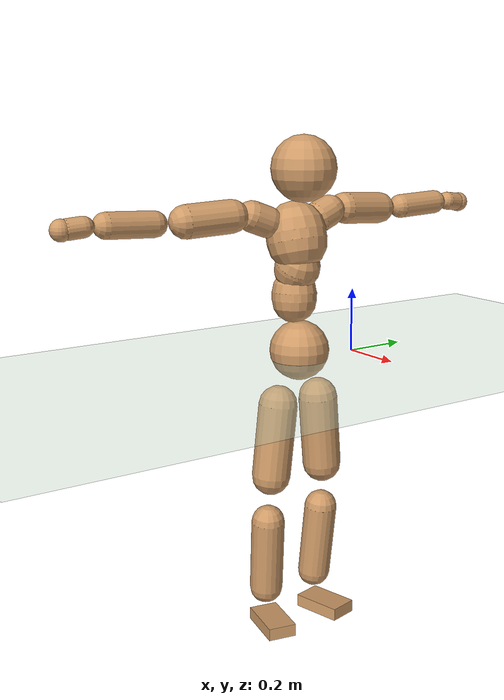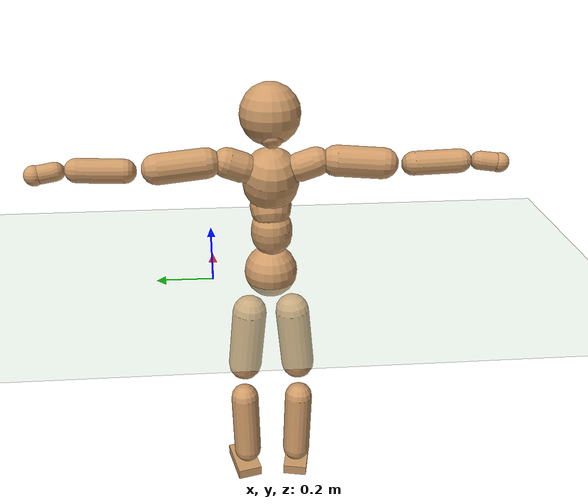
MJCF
<mujoco model="humanoid">
  <compiler coordinate="local" angle="radian"/>
  <default>
    <joint damping="0.0" armature="0.01" stiffness="0.0" limited="true"/>
    <geom conaffinity="1" condim="3" contype="7" margin="0.001" rgba="0.8 0.6 .4 1"/>
  </default>
  <asset>
    <texture type="skybox" builtin="gradient" rgb1=".4 .5 .6" rgb2="0 0 0" width="100" height="100"/>
    <texture builtin="flat" height="1278" mark="cross" markrgb="1 1 1" name="texgeom" random="0.01" rgb1="0.8 0.6 0.4" rgb2="0.8 0.6 0.4" type="cube" width="127"/>
    <texture builtin="checker" height="100" name="texplane" rgb1="0 0 0" rgb2="0.8 0.8 0.8" type="2d" width="100"/>
    <material name="MatPlane" reflectance="0.5" shininess="1" specular="1" texrepeat="60 60" texture="texplane"/>
    <material name="geom" texture="texgeom" texuniform="true"/>
  </asset>
  <worldbody>
    <light cutoff="100" diffuse="1 1 1" dir="-0 0 -1.3" directional="true" exponent="1" pos="0 0 1.3" specular=".1 .1 .1"/>
    <geom conaffinity="1" condim="3" name="floor" pos="0 0 0" rgba="0.8 0.9 0.8 1" size="100 100 .2" type="plane" material="MatPlane"/>
    <body name="Pelvis" pos="-0.0018 -0.2068 0.0279">
      <freejoint name="Pelvis"/>
      <geom type="sphere" contype="1" conaffinity="1" density="500" size="0.0939" pos="0.0000 0.0000 0.0000" name="Pelvis"/>
      <body name="L_Hip" pos="-0.0062 0.0723 -0.09">
        <joint name="L_Hip_x" type="hinge" pos="0 0 0" axis="1 0 0" stiffness="800" damping="80" armature="0.02" range="-180.0000 180.0000"/>
        <joint name="L_Hip_y" type="hinge" pos="0 0 0" axis="0 1 0" stiffness="800" damping="80" armature="0.02" range="-180.0000 180.0000"/>
        <joint name="L_Hip_z" type="hinge" pos="0 0 0" axis="0 0 1" stiffness="800" damping="80" armature="0.02" range="-180.0000 180.0000"/>
        <geom type="capsule" contype="1" conaffinity="1" density="500" fromto="-0.0010 0.0069 -0.0768 -0.0040 0.0277 -0.3072" size="0.0622" name="L_Hip"/>
        <body name="L_Knee" pos="-0.005 0.0346 -0.384">
          <joint name="L_Knee_x" type="hinge" pos="0 0 0" axis="1 0 0" stiffness="800" damping="80" armature="0.02" range="-180.0000 180.0000"/>
          <joint name="L_Knee_y" type="hinge" pos="0 0 0" axis="0 1 0" stiffness="800" damping="80" armature="0.02" range="-180.0000 180.0000"/>
          <joint name="L_Knee_z" type="hinge" pos="0 0 0" axis="0 0 1" stiffness="800" damping="80" armature="0.02" range="-180.0000 180.0000"/>
          <geom type="capsule" contype="1" conaffinity="1" density="500" fromto="-0.0089 -0.0022 -0.0810 -0.0355 -0.0087 -0.3238" size="0.0534" name="L_Knee"/>
          <body name="L_Ankle" pos="-0.0444 -0.0109 -0.4048">
            <joint name="L_Ankle_x" type="hinge" pos="0 0 0" axis="1 0 0" stiffness="800" damping="80" armature="0.02" range="-180.0000 180.0000"/>
            <joint name="L_Ankle_y" type="hinge" pos="0 0 0" axis="0 1 0" stiffness="800" damping="80" armature="0.02" range="-180.0000 180.0000"/>
            <joint name="L_Ankle_z" type="hinge" pos="0 0 0" axis="0 0 1" stiffness="800" damping="80" armature="0.02" range="-180.0000 180.0000"/>
            <geom type="box" contype="1" conaffinity="1" density="500" pos="0.0582 0.0135 -0.0289" size="0.0829 0.0472 0.0203" quat="0.9935 0.0000 0.0000 0.1135" name="L_Ankle"/>
            <body name="L_Toe" pos="0.1163 0.0269 -0.0579">
              <joint name="L_Toe_x" type="hinge" pos="0 0 0" axis="1 0 0" stiffness="500" damping="50" armature="0.02" range="-180.0000 180.0000"/>
              <joint name="L_Toe_y" type="hinge" pos="0 0 0" axis="0 1 0" stiffness="500" damping="50" armature="0.02" range="-180.0000 180.0000"/>
              <joint name="L_Toe_z" type="hinge" pos="0 0 0" axis="0 0 1" stiffness="500" damping="50" armature="0.02" range="-180.0000 180.0000"/>
              <geom type="box" contype="1" conaffinity="1" density="500" pos="0.0000 0.0000 0.0292" size="0.0009 0.0023 0.001" quat="0.9928 0.0000 0.0000 0.1196" name="L_Toe"/>
            </body>
          </body>
        </body>
      </body>
      <body name="R_Hip" pos="-0.0029 -0.0702 -0.0893">
        <joint name="R_Hip_x" type="hinge" pos="0 0 0" axis="1 0 0" stiffness="800" damping="80" armature="0.02" range="-180.0000 180.0000"/>
        <joint name="R_Hip_y" type="hinge" pos="0 0 0" axis="0 1 0" stiffness="800" damping="80" armature="0.02" range="-180.0000 180.0000"/>
        <joint name="R_Hip_z" type="hinge" pos="0 0 0" axis="0 0 1" stiffness="800" damping="80" armature="0.02" range="-180.0000 180.0000"/>
        <geom type="capsule" contype="1" conaffinity="1" density="500" fromto="-0.0015 -0.0081 -0.0782 -0.0061 -0.0325 -0.3126" size="0.0614" name="R_Hip"/>
        <body name="R_Knee" pos="-0.0076 -0.0407 -0.3908">
          <joint name="R_Knee_x" type="hinge" pos="0 0 0" axis="1 0 0" stiffness="800" damping="80" armature="0.02" range="-180.0000 180.0000"/>
          <joint name="R_Knee_y" type="hinge" pos="0 0 0" axis="0 1 0" stiffness="800" damping="80" armature="0.02" range="-180.0000 180.0000"/>
          <joint name="R_Knee_z" type="hinge" pos="0 0 0" axis="0 0 1" stiffness="800" damping="80" armature="0.02" range="-180.0000 180.0000"/>
          <geom type="capsule" contype="1" conaffinity="1" density="500" fromto="-0.0086 0.0027 -0.0810 -0.0342 0.0109 -0.3241" size="0.0536" name="R_Knee"/>
          <body name="R_Ankle" pos="-0.0428 0.0136 -0.4051">
            <joint name="R_Ankle_x" type="hinge" pos="0 0 0" axis="1 0 0" stiffness="800" damping="80" armature="0.02" range="-180.0000 180.0000"/>
            <joint name="R_Ankle_y" type="hinge" pos="0 0 0" axis="0 1 0" stiffness="800" damping="80" armature="0.02" range="-180.0000 180.0000"/>
            <joint name="R_Ankle_z" type="hinge" pos="0 0 0" axis="0 0 1" stiffness="800" damping="80" armature="0.02" range="-180.0000 180.0000"/>
            <geom type="box" contype="1" conaffinity="1" density="500" pos="0.0599 -0.0121 -0.0243" size="0.084 0.0464 0.0203" quat="0.9950 0.0000 0.0000 -0.0998" name="R_Ankle"/>
            <body name="R_Toe" pos="0.1198 -0.0243 -0.0486">
              <joint name="R_Toe_x" type="hinge" pos="0 0 0" axis="1 0 0" stiffness="500" damping="50" armature="0.02" range="-180.0000 180.0000"/>
              <joint name="R_Toe_y" type="hinge" pos="0 0 0" axis="0 1 0" stiffness="500" damping="50" armature="0.02" range="-180.0000 180.0000"/>
              <joint name="R_Toe_z" type="hinge" pos="0 0 0" axis="0 0 1" stiffness="500" damping="50" armature="0.02" range="-180.0000 180.0000"/>
              <geom type="box" contype="1" conaffinity="1" density="500" pos="0.0000 0.0000 0.0269" size="0.0008 0.0023 0.0011" quat="0.9959 0.0000 0.0000 -0.0904" name="R_Toe"/>
            </body>
          </body>
        </body>
      </body>
      <body name="Torso" pos="-0.025 -0.0031 0.104">
        <joint name="Torso_x" type="hinge" pos="0 0 0" axis="1 0 0" stiffness="1000" damping="100" armature="0.02" range="-180.0000 180.0000"/>
        <joint name="Torso_y" type="hinge" pos="0 0 0" axis="0 1 0" stiffness="1000" damping="100" armature="0.02" range="-180.0000 180.0000"/>
        <joint name="Torso_z" type="hinge" pos="0 0 0" axis="0 0 1" stiffness="1000" damping="100" armature="0.02" range="-180.0000 180.0000"/>
        <geom type="capsule" contype="1" conaffinity="1" density="500" fromto="-0.0026 0.0027 0.0764 -0.0017 0.0018 0.0509" size="0.0706" name="Torso"/>
        <body name="Spine" pos="-0.0043 0.0045 0.1274">
          <joint name="Spine_x" type="hinge" pos="0 0 0" axis="1 0 0" stiffness="1000" damping="100" armature="0.02" range="-180.0000 180.0000"/>
          <joint name="Spine_y" type="hinge" pos="0 0 0" axis="0 1 0" stiffness="1000" damping="100" armature="0.02" range="-180.0000 180.0000"/>
          <joint name="Spine_z" type="hinge" pos="0 0 0" axis="0 0 1" stiffness="1000" damping="100" armature="0.02" range="-180.0000 180.0000"/>
          <geom type="capsule" contype="1" conaffinity="1" density="500" fromto="0.0163 0.0009 0.0298 0.0109 0.0006 0.0199" size="0.0708" name="Spine"/>
          <body name="Chest" pos="0.0271 0.0015 0.0497">
            <joint name="Chest_x" type="hinge" pos="0 0 0" axis="1 0 0" stiffness="1000" damping="100" armature="0.02" range="-180.0000 180.0000"/>
            <joint name="Chest_y" type="hinge" pos="0 0 0" axis="0 1 0" stiffness="1000" damping="100" armature="0.02" range="-180.0000 180.0000"/>
            <joint name="Chest_z" type="hinge" pos="0 0 0" axis="0 0 1" stiffness="1000" damping="100" armature="0.02" range="-180.0000 180.0000"/>
            <geom type="capsule" contype="1" conaffinity="1" density="500" fromto="-0.0219 -0.0013 0.0869 -0.0146 -0.0008 0.0579" size="0.094" name="Chest"/>
            <body name="Neck" pos="-0.0362 -0.0044 0.2072">
              <joint name="Neck_x" type="hinge" pos="0 0 0" axis="1 0 0" stiffness="500" damping="50" armature="0.02" range="-180.0000 180.0000"/>
              <joint name="Neck_y" type="hinge" pos="0 0 0" axis="0 1 0" stiffness="500" damping="50" armature="0.02" range="-180.0000 180.0000"/>
              <joint name="Neck_z" type="hinge" pos="0 0 0" axis="0 0 1" stiffness="500" damping="50" armature="0.02" range="-180.0000 180.0000"/>
              <geom type="capsule" contype="1" conaffinity="1" density="500" fromto="0.0113 0.0006 0.0142 0.0452 0.0022 0.0567" size="0.0414" name="Neck"/>
              <body name="Head" pos="0.0565 0.0028 0.0708">
                <joint name="Head_x" type="hinge" pos="0 0 0" axis="1 0 0" stiffness="500" damping="50" armature="0.02" range="-180.0000 180.0000"/>
                <joint name="Head_y" type="hinge" pos="0 0 0" axis="0 1 0" stiffness="500" damping="50" armature="0.02" range="-180.0000 180.0000"/>
                <joint name="Head_z" type="hinge" pos="0 0 0" axis="0 0 1" stiffness="500" damping="50" armature="0.02" range="-180.0000 180.0000"/>
                <geom type="sphere" contype="1" conaffinity="1" density="500" size="0.1006" pos="0.0000 0.0000 0.0000" name="Head"/>
              </body>
            </body>
            <body name="L_Thorax" pos="-0.0343 0.0743 0.1144">
              <joint name="L_Thorax_x" type="hinge" pos="0 0 0" axis="1 0 0" stiffness="500" damping="50" armature="0.02" range="-180.0000 180.0000"/>
              <joint name="L_Thorax_y" type="hinge" pos="0 0 0" axis="0 1 0" stiffness="500" damping="50" armature="0.02" range="-180.0000 180.0000"/>
              <joint name="L_Thorax_z" type="hinge" pos="0 0 0" axis="0 0 1" stiffness="500" damping="50" armature="0.02" range="-180.0000 180.0000"/>
              <geom type="capsule" contype="1" conaffinity="1" density="500" fromto="-0.0017 0.0167 0.0066 -0.0070 0.0667 0.0262" size="0.0495" name="L_Thorax"/>
              <body name="L_Shoulder" pos="-0.0087 0.0834 0.0328">
                <joint name="L_Shoulder_x" type="hinge" pos="0 0 0" axis="1 0 0" stiffness="500" damping="50" armature="0.02" range="-720.0000 720.0000"/>
                <joint name="L_Shoulder_y" type="hinge" pos="0 0 0" axis="0 1 0" stiffness="500" damping="50" armature="0.02" range="-720.0000 720.0000"/>
                <joint name="L_Shoulder_z" type="hinge" pos="0 0 0" axis="0 0 1" stiffness="500" damping="50" armature="0.02" range="-720.0000 720.0000"/>
                <geom type="capsule" contype="1" conaffinity="1" density="500" fromto="-0.0061 0.0517 -0.0031 -0.0244 0.2066 -0.0126" size="0.0498" name="L_Shoulder"/>
                <body name="L_Elbow" pos="-0.0305 0.2583 -0.0157">
                  <joint name="L_Elbow_x" type="hinge" pos="0 0 0" axis="1 0 0" stiffness="500" damping="50" armature="0.02" range="-720.0000 720.0000"/>
                  <joint name="L_Elbow_y" type="hinge" pos="0 0 0" axis="0 1 0" stiffness="500" damping="50" armature="0.02" range="-720.0000 720.0000"/>
                  <joint name="L_Elbow_z" type="hinge" pos="0 0 0" axis="0 0 1" stiffness="500" damping="50" armature="0.02" range="-720.0000 720.0000"/>
                  <geom type="capsule" contype="1" conaffinity="1" density="500" fromto="-0.0001 0.0491 0.0021 -0.0003 0.1965 0.0083" size="0.0388" name="L_Elbow"/>
                  <body name="L_Wrist" pos="-0.0004 0.2456 0.0103">
                    <joint name="L_Wrist_x" type="hinge" pos="0 0 0" axis="1 0 0" stiffness="300" damping="30" armature="0.02" range="-180.0000 180.0000"/>
                    <joint name="L_Wrist_y" type="hinge" pos="0 0 0" axis="0 1 0" stiffness="300" damping="30" armature="0.02" range="-180.0000 180.0000"/>
                    <joint name="L_Wrist_z" type="hinge" pos="0 0 0" axis="0 0 1" stiffness="300" damping="30" armature="0.02" range="-180.0000 180.0000"/>
                    <geom type="capsule" contype="1" conaffinity="1" density="500" fromto="-0.0027 0.0160 -0.0020 -0.0107 0.0640 -0.0079" size="0.0301" name="L_Wrist"/>
                    <body name="L_Hand" pos="-0.0134 0.0801 -0.0099">
                      <joint name="L_Hand_x" type="hinge" pos="0 0 0" axis="1 0 0" stiffness="300" damping="30" armature="0.02" range="-180.0000 180.0000"/>
                      <joint name="L_Hand_y" type="hinge" pos="0 0 0" axis="0 1 0" stiffness="300" damping="30" armature="0.02" range="-180.0000 180.0000"/>
                      <joint name="L_Hand_z" type="hinge" pos="0 0 0" axis="0 0 1" stiffness="300" damping="30" armature="0.02" range="-180.0000 180.0000"/>
                      <geom type="sphere" contype="1" conaffinity="1" density="500" size="0.0323" pos="0.0000 0.0000 0.0000" name="L_Hand"/>
                    </body>
                  </body>
                </body>
              </body>
            </body>
            <body name="R_Thorax" pos="-0.0389 -0.0763 0.1128">
              <joint name="R_Thorax_x" type="hinge" pos="0 0 0" axis="1 0 0" stiffness="500" damping="50" armature="0.02" range="-180.0000 180.0000"/>
              <joint name="R_Thorax_y" type="hinge" pos="0 0 0" axis="0 1 0" stiffness="500" damping="50" armature="0.02" range="-180.0000 180.0000"/>
              <joint name="R_Thorax_z" type="hinge" pos="0 0 0" axis="0 0 1" stiffness="500" damping="50" armature="0.02" range="-180.0000 180.0000"/>
              <geom type="capsule" contype="1" conaffinity="1" density="500" fromto="-0.0019 -0.0171 0.0065 -0.0078 -0.0684 0.0260" size="0.0481" name="R_Thorax"/>
              <body name="R_Shoulder" pos="-0.0097 -0.0855 0.0324">
                <joint name="R_Shoulder_x" type="hinge" pos="0 0 0" axis="1 0 0" stiffness="500" damping="50" armature="0.02" range="-720.0000 720.0000"/>
                <joint name="R_Shoulder_y" type="hinge" pos="0 0 0" axis="0 1 0" stiffness="500" damping="50" armature="0.02" range="-720.0000 720.0000"/>
                <joint name="R_Shoulder_z" type="hinge" pos="0 0 0" axis="0 0 1" stiffness="500" damping="50" armature="0.02" range="-720.0000 720.0000"/>
                <geom type="capsule" contype="1" conaffinity="1" density="500" fromto="-0.0048 -0.0496 -0.0027 -0.0192 -0.1984 -0.0106" size="0.0507" name="R_Shoulder"/>
                <body name="R_Elbow" pos="-0.024 -0.248 -0.0133">
                  <joint name="R_Elbow_x" type="hinge" pos="0 0 0" axis="1 0 0" stiffness="500" damping="50" armature="0.02" range="-720.0000 720.0000"/>
                  <joint name="R_Elbow_y" type="hinge" pos="0 0 0" axis="0 1 0" stiffness="500" damping="50" armature="0.02" range="-720.0000 720.0000"/>
                  <joint name="R_Elbow_z" type="hinge" pos="0 0 0" axis="0 0 1" stiffness="500" damping="50" armature="0.02" range="-720.0000 720.0000"/>
                  <geom type="capsule" contype="1" conaffinity="1" density="500" fromto="-0.0007 -0.0499 0.0019 -0.0028 -0.1996 0.0074" size="0.0388" name="R_Elbow"/>
                  <body name="R_Wrist" pos="-0.0035 -0.2495 0.0093">
                    <joint name="R_Wrist_x" type="hinge" pos="0 0 0" axis="1 0 0" stiffness="300" damping="30" armature="0.02" range="-180.0000 180.0000"/>
                    <joint name="R_Wrist_y" type="hinge" pos="0 0 0" axis="0 1 0" stiffness="300" damping="30" armature="0.02" range="-180.0000 180.0000"/>
                    <joint name="R_Wrist_z" type="hinge" pos="0 0 0" axis="0 0 1" stiffness="300" damping="30" armature="0.02" range="-180.0000 180.0000"/>
                    <geom type="capsule" contype="1" conaffinity="1" density="500" fromto="-0.0020 -0.0158 -0.0014 -0.0081 -0.0632 -0.0058" size="0.0304" name="R_Wrist"/>
                    <body name="R_Hand" pos="-0.0102 -0.079 -0.0072">
                      <joint name="R_Hand_x" type="hinge" pos="0 0 0" axis="1 0 0" stiffness="300" damping="30" armature="0.02" range="-180.0000 180.0000"/>
                      <joint name="R_Hand_y" type="hinge" pos="0 0 0" axis="0 1 0" stiffness="300" damping="30" armature="0.02" range="-180.0000 180.0000"/>
                      <joint name="R_Hand_z" type="hinge" pos="0 0 0" axis="0 0 1" stiffness="300" damping="30" armature="0.02" range="-180.0000 180.0000"/>
                      <geom type="sphere" contype="1" conaffinity="1" density="500" size="0.0318" pos="0.0000 0.0000 0.0000" name="R_Hand"/>
                    </body>
                  </body>
                </body>
              </body>
            </body>
          </body>
        </body>
      </body>
    </body>
  </worldbody>
  <actuator>
    <motor name="L_Hip_x" joint="L_Hip_x" gear="500"/>
    <motor name="L_Hip_y" joint="L_Hip_y" gear="500"/>
    <motor name="L_Hip_z" joint="L_Hip_z" gear="500"/>
    <motor name="L_Knee_x" joint="L_Knee_x" gear="500"/>
    <motor name="L_Knee_y" joint="L_Knee_y" gear="500"/>
    <motor name="L_Knee_z" joint="L_Knee_z" gear="500"/>
    <motor name="L_Ankle_x" joint="L_Ankle_x" gear="500"/>
    <motor name="L_Ankle_y" joint="L_Ankle_y" gear="500"/>
    <motor name="L_Ankle_z" joint="L_Ankle_z" gear="500"/>
    <motor name="L_Toe_x" joint="L_Toe_x" gear="500"/>
    <motor name="L_Toe_y" joint="L_Toe_y" gear="500"/>
    <motor name="L_Toe_z" joint="L_Toe_z" gear="500"/>
    <motor name="R_Hip_x" joint="R_Hip_x" gear="500"/>
    <motor name="R_Hip_y" joint="R_Hip_y" gear="500"/>
    <motor name="R_Hip_z" joint="R_Hip_z" gear="500"/>
    <motor name="R_Knee_x" joint="R_Knee_x" gear="500"/>
    <motor name="R_Knee_y" joint="R_Knee_y" gear="500"/>
    <motor name="R_Knee_z" joint="R_Knee_z" gear="500"/>
    <motor name="R_Ankle_x" joint="R_Ankle_x" gear="500"/>
    <motor name="R_Ankle_y" joint="R_Ankle_y" gear="500"/>
    <motor name="R_Ankle_z" joint="R_Ankle_z" gear="500"/>
    <motor name="R_Toe_x" joint="R_Toe_x" gear="500"/>
    <motor name="R_Toe_y" joint="R_Toe_y" gear="500"/>
    <motor name="R_Toe_z" joint="R_Toe_z" gear="500"/>
    <motor name="Torso_x" joint="Torso_x" gear="500"/>
    <motor name="Torso_y" joint="Torso_y" gear="500"/>
    <motor name="Torso_z" joint="Torso_z" gear="500"/>
    <motor name="Spine_x" joint="Spine_x" gear="500"/>
    <motor name="Spine_y" joint="Spine_y" gear="500"/>
    <motor name="Spine_z" joint="Spine_z" gear="500"/>
    <motor name="Chest_x" joint="Chest_x" gear="500"/>
    <motor name="Chest_y" joint="Chest_y" gear="500"/>
    <motor name="Chest_z" joint="Chest_z" gear="500"/>
    <motor name="Neck_x" joint="Neck_x" gear="500"/>
    <motor name="Neck_y" joint="Neck_y" gear="500"/>
    <motor name="Neck_z" joint="Neck_z" gear="500"/>
    <motor name="Head_x" joint="Head_x" gear="500"/>
    <motor name="Head_y" joint="Head_y" gear="500"/>
    <motor name="Head_z" joint="Head_z" gear="500"/>
    <motor name="L_Thorax_x" joint="L_Thorax_x" gear="500"/>
    <motor name="L_Thorax_y" joint="L_Thorax_y" gear="500"/>
    <motor name="L_Thorax_z" joint="L_Thorax_z" gear="500"/>
    <motor name="L_Shoulder_x" joint="L_Shoulder_x" gear="500"/>
    <motor name="L_Shoulder_y" joint="L_Shoulder_y" gear="500"/>
    <motor name="L_Shoulder_z" joint="L_Shoulder_z" gear="500"/>
    <motor name="L_Elbow_x" joint="L_Elbow_x" gear="500"/>
    <motor name="L_Elbow_y" joint="L_Elbow_y" gear="500"/>
    <motor name="L_Elbow_z" joint="L_Elbow_z" gear="500"/>
    <motor name="L_Wrist_x" joint="L_Wrist_x" gear="500"/>
    <motor name="L_Wrist_y" joint="L_Wrist_y" gear="500"/>
    <motor name="L_Wrist_z" joint="L_Wrist_z" gear="500"/>
    <motor name="L_Hand_x" joint="L_Hand_x" gear="500"/>
    <motor name="L_Hand_y" joint="L_Hand_y" gear="500"/>
    <motor name="L_Hand_z" joint="L_Hand_z" gear="500"/>
    <motor name="R_Thorax_x" joint="R_Thorax_x" gear="500"/>
    <motor name="R_Thorax_y" joint="R_Thorax_y" gear="500"/>
    <motor name="R_Thorax_z" joint="R_Thorax_z" gear="500"/>
    <motor name="R_Shoulder_x" joint="R_Shoulder_x" gear="500"/>
    <motor name="R_Shoulder_y" joint="R_Shoulder_y" gear="500"/>
    <motor name="R_Shoulder_z" joint="R_Shoulder_z" gear="500"/>
    <motor name="R_Elbow_x" joint="R_Elbow_x" gear="500"/>
    <motor name="R_Elbow_y" joint="R_Elbow_y" gear="500"/>
    <motor name="R_Elbow_z" joint="R_Elbow_z" gear="500"/>
    <motor name="R_Wrist_x" joint="R_Wrist_x" gear="500"/>
    <motor name="R_Wrist_y" joint="R_Wrist_y" gear="500"/>
    <motor name="R_Wrist_z" joint="R_Wrist_z" gear="500"/>
    <motor name="R_Hand_x" joint="R_Hand_x" gear="500"/>
    <motor name="R_Hand_y" joint="R_Hand_y" gear="500"/>
    <motor name="R_Hand_z" joint="R_Hand_z" gear="500"/>
  </actuator>
  <contact>
    <exclude body1="Torso" body2="Chest"/>
    <exclude body1="Head" body2="Chest"/>
    <exclude body1="R_Knee" body2="R_Toe"/>
    <exclude body1="R_Knee" body2="L_Ankle"/>
    <exclude body1="R_Knee" body2="L_Toe"/>
    <exclude body1="L_Knee" body2="L_Toe"/>
    <exclude body1="L_Knee" body2="R_Ankle"/>
    <exclude body1="L_Knee" body2="R_Toe"/>
    <exclude body1="L_Shoulder" body2="Chest"/>
    <exclude body1="R_Shoulder" body2="Chest"/>
  </contact>
  <sensor/>
  <size njmax="700" nconmax="700"/>
</mujoco>
